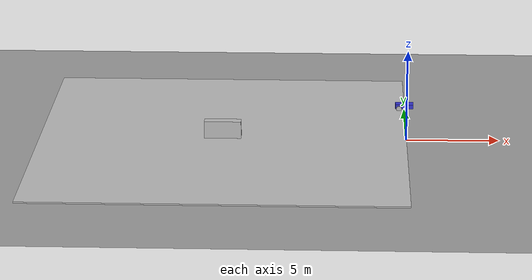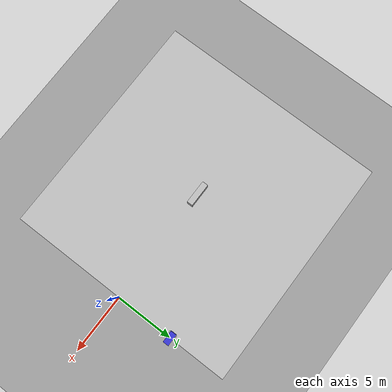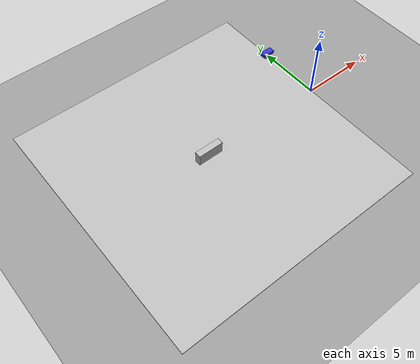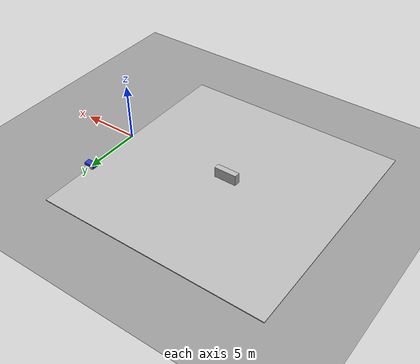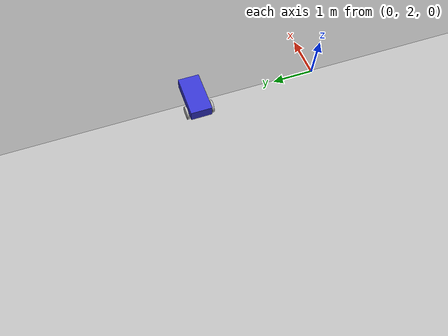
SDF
<sdf version="1.12">
 <world name="test_world">
  <gravity>0 0 -9.81</gravity>
  <magnetic_field>5.5645e-6 22.8758e-6 -42.3884e-6</magnetic_field>
  <wind><linear_velocity>1.5 0.5 0</linear_velocity></wind>
  <atmosphere type="adiabatic">
   <temperature>288.15</temperature>
   <temperature_gradient>-0.0065</temperature_gradient>
   <pressure>101325</pressure>
  </atmosphere>
  <scene>
   <ambient>0.4 0.4 0.4 1</ambient>
   <background>0.7 0.8 0.95 1</background>
   <shadows>true</shadows>
   <grid>true</grid>
   <origin_visual>true</origin_visual>
   <sky>
    <time>12</time>
    <sunrise>6</sunrise>
    <sunset>18</sunset>
    <clouds>
     <speed>5</speed>
     <direction>0.7</direction>
     <humidity>0.6</humidity>
     <mean_size>0.5</mean_size>
     <ambient>0.9 0.9 0.9 1</ambient>
    </clouds>
   </sky>
  </scene>
  <physics name="fast_physics" type="ode">
   <max_step_size>0.002</max_step_size>
   <real_time_factor>1</real_time_factor>
   <max_contacts>20</max_contacts>
  </physics>
  <physics name="precise_physics" default="true" type="bullet">
   <max_step_size>0.0005</max_step_size>
   <real_time_factor>0.5</real_time_factor>
   <max_contacts>50</max_contacts>
  </physics>
  <spherical_coordinates>
   <surface_model>EARTH_WGS84</surface_model>
   <world_frame_orientation>ENU</world_frame_orientation>
   <latitude_deg>37.386</latitude_deg>
   <longitude_deg>-122.083</longitude_deg>
   <elevation>10.5</elevation>
   <heading_deg>90</heading_deg>
  </spherical_coordinates>
  <model name="ground_plane">
   <static>true</static>
   <link name="link">
    <collision name="collision">
     <geometry><plane><normal>0 0 1</normal><size>200 200</size></plane></geometry>
     <surface>
      <contact>
       <collide_bitmask>0xffff</collide_bitmask>
       <collide_without_contact>false</collide_without_contact>
       <collide_without_contact_bitmask>1</collide_without_contact_bitmask>
       <category_bitmask>0x00ff</category_bitmask>
       <poissons_ratio>0.3</poissons_ratio>
       <elastic_modulus>1e8</elastic_modulus>
      </contact>
      <friction>
       <ode><mu>100</mu><mu2>50</mu2><fdir1>1 0 0</fdir1><slip1>0.01</slip1><slip2>0.01</slip2></ode>
       <bullet><friction>0.8</friction><friction2>0.6</friction2><rolling_friction>0.01</rolling_friction></bullet>
       <torsional>
        <coefficient>0.5</coefficient>
        <use_patch_radius>true</use_patch_radius>
        <patch_radius>0.05</patch_radius>
        <surface_radius>0.02</surface_radius>
        <ode><slip>0.001</slip></ode>
       </torsional>
      </friction>
      <bounce><restitution_coefficient>0.5</restitution_coefficient><threshold>1000</threshold></bounce>
     </surface>
    </collision>
    <visual name="visual">
     <geometry><plane><normal>0 0 1</normal><size>200 200</size></plane></geometry>
     <material>
      <ambient>0.6 0.6 0.6 1</ambient>
      <diffuse>0.6 0.6 0.6 1</diffuse>
      <specular>0.1 0.1 0.1 1</specular>
      <emissive>0 0 0 1</emissive>
      <lighting>true</lighting>
      <double_sided>false</double_sided>
      <shininess>30</shininess>
     </material>
     <cast_shadows>false</cast_shadows>
     <laser_retro>50.0</laser_retro>
     <visibility_flags>1</visibility_flags>
    </visual>
   </link>
  </model>
  <model name="sensor_robot">
   <pose>0 5 0.25 0 0 0</pose>
   <self_collide>true</self_collide>
   <link name="base">
    <self_collide>true</self_collide>
    <velocity_decay><linear>0.01</linear><angular>0.02</angular></velocity_decay>
    <inertial auto="true">
     <mass>10</mass>
     <inertia><ixx>0.833</ixx><iyy>0.833</iyy><izz>0.833</izz><ixy>0</ixy><ixz>0</ixz><iyz>0</iyz></inertia>
    </inertial>
    <enable_wind>true</enable_wind>
    <enable_gravity>true</enable_gravity>
    <collision name="base_collision">
     <density>2700</density>
     <laser_retro>80</laser_retro>
     <max_contacts>15</max_contacts>
     <geometry><box><size>1 0.5 0.25</size></box></geometry>
     <surface><friction><ode><mu>1.0</mu><mu2>0.8</mu2></ode></friction></surface>
    </collision>
    <visual name="base_visual">
     <meta><layer>2</layer></meta>
     <geometry><box><size>1 0.5 0.25</size></box></geometry>
     <material>
      <ambient>0.2 0.2 0.8 1</ambient>
      <diffuse>0.2 0.2 0.8 1</diffuse>
      <specular>0.5 0.5 0.5 1</specular>
      <shininess>50</shininess>
      <pbr>
       <metal>
        <albedo_map>textures/base_albedo.png</albedo_map>
        <normal_map type="tangent">textures/base_normal.png</normal_map>
        <roughness_map>textures/base_roughness.png</roughness_map>
        <metalness_map>textures/base_metalness.png</metalness_map>
        <metalness>0.7</metalness>
        <roughness>0.3</roughness>
        <environment_map>textures/env.dds</environment_map>
        <emissive_map>textures/base_emissive.png</emissive_map>
        <light_map uv_set="1">textures/base_lightmap.png</light_map>
       </metal>
      </pbr>
     </material>
     <transparency>0.1</transparency>
     <laser_retro>100.0</laser_retro>
     <visibility_flags>3</visibility_flags>
    </visual>
    <sensor name="front_camera" type="camera">
     <pose>0.5 0 0.15 0 0 0</pose>
     <update_rate>30</update_rate>
     <topic>/robot/camera</topic>
     <frame_id>camera_optical_frame</frame_id>
     <always_on>true</always_on>
     <visualize>true</visualize>
     <enable_metrics>false</enable_metrics>
     <camera name="rgb_cam">
      <horizontal_fov>1.396</horizontal_fov>
      <image><width>1920</width><height>1080</height><format>R8G8B8</format><anti_aliasing>8</anti_aliasing></image>
      <clip><near>0.05</near><far>300</far></clip>
      <depth_camera><clip><near>0.1</near><far>50</far></clip></depth_camera>
      <noise type="gaussian"><mean>0.0</mean><stddev>0.007</stddev></noise>
      <save enabled="true"><path>/tmp/camera_frames</path></save>
      <visibility_mask>0xFFFF</visibility_mask>
      <triggered>true</triggered>
      <trigger_topic>/camera/trigger</trigger_topic>
      <camera_info_topic>/camera/info</camera_info_topic>
      <optical_frame_id>optical_frame</optical_frame_id>
      <distortion>
       <k1>0.1</k1>
       <k2>0.2</k2>
       <k3>0.3</k3>
       <p1>0.01</p1>
       <p2>0.02</p2>
       <center>0.5 0.5</center>
      </distortion>
      <lens>
       <type>stereographic</type>
       <scale_to_hfov>true</scale_to_hfov>
       <cutoff_angle>1.5707</cutoff_angle>
       <env_texture_size>512</env_texture_size>
       <intrinsics><fx>960</fx><fy>960</fy><cx>960</cx><cy>540</cy><s>0</s></intrinsics>
      </lens>
     </camera>
    </sensor>
    <sensor name="depth_cam" type="depth_camera">
     <pose>0.5 0.05 0.15 0 0 0</pose>
     <update_rate>15</update_rate>
     <camera name="depth">
      <horizontal_fov>1.047</horizontal_fov>
      <image><width>640</width><height>480</height><format>R_FLOAT32</format></image>
      <clip><near>0.1</near><far>10</far></clip>
     </camera>
    </sensor>
    <sensor name="body_imu" type="imu">
     <pose>0 0 0.05 0 0 0</pose>
     <update_rate>200</update_rate>
     <imu>
      <linear_acceleration>
       <x>
        <noise type="gaussian">
         <mean>0</mean>
         <stddev>0.01</stddev>
         <bias_mean>0.001</bias_mean>
         <bias_stddev>0.0001</bias_stddev>
         <dynamic_bias_stddev>0.00002</dynamic_bias_stddev>
         <dynamic_bias_correlation_time>300</dynamic_bias_correlation_time>
        </noise>
       </x>
       <y><noise type="gaussian"><mean>0</mean><stddev>0.01</stddev></noise></y>
       <z><noise type="gaussian"><mean>0</mean><stddev>0.01</stddev></noise></z>
      </linear_acceleration>
      <angular_velocity>
       <x><noise type="gaussian"><mean>0</mean><stddev>0.005</stddev></noise></x>
       <y><noise type="gaussian"><mean>0</mean><stddev>0.005</stddev></noise></y>
       <z><noise type="gaussian"><mean>0</mean><stddev>0.005</stddev></noise></z>
      </angular_velocity>
      <orientation_reference_frame>
       <localization>ENU</localization>
       <custom_rpy parent_frame="world">0 0 0</custom_rpy>
       <grav_dir_x parent_frame="world">1 0 0</grav_dir_x>
      </orientation_reference_frame>
      <enable_orientation>true</enable_orientation>
     </imu>
    </sensor>
    <sensor name="lidar_360" type="gpu_lidar">
     <pose>0 0 0.3 0 0 0</pose>
     <update_rate>10</update_rate>
     <topic>/robot/lidar</topic>
     <lidar>
      <scan>
       <horizontal>
        <samples>640</samples>
        <resolution>1</resolution>
        <min_angle>-3.14159</min_angle>
        <max_angle>3.14159</max_angle>
       </horizontal>
       <vertical>
        <samples>16</samples>
        <resolution>1</resolution>
        <min_angle>-0.2618</min_angle>
        <max_angle>0.2618</max_angle>
       </vertical>
      </scan>
      <range><min>0.08</min><max>100.0</max><resolution>0.01</resolution></range>
      <noise type="gaussian"><mean>0</mean><stddev>0.02</stddev></noise>
      <visibility_mask>0xFFFF</visibility_mask>
     </lidar>
    </sensor>
    <sensor name="wrist_ft" type="force_torque">
     <update_rate>500</update_rate>
     <force_torque>
      <frame>child</frame>
      <measure_direction>child_to_parent</measure_direction>
      <force>
       <x><noise type="gaussian"><mean>0</mean><stddev>0.1</stddev></noise></x>
       <y><noise type="gaussian"><mean>0</mean><stddev>0.1</stddev></noise></y>
       <z><noise type="gaussian"><mean>0</mean><stddev>0.1</stddev></noise></z>
      </force>
      <torque>
       <x><noise type="gaussian"><mean>0</mean><stddev>0.01</stddev></noise></x>
       <y><noise type="gaussian"><mean>0</mean><stddev>0.01</stddev></noise></y>
       <z><noise type="gaussian"><mean>0</mean><stddev>0.01</stddev></noise></z>
      </torque>
     </force_torque>
    </sensor>
    <sensor name="bumper" type="contact"><update_rate>100</update_rate></sensor>
    <sensor name="altitude" type="altimeter">
     <update_rate>20</update_rate>
     <altimeter>
      <vertical_position><noise type="gaussian"><mean>0</mean><stddev>0.1</stddev></noise></vertical_position>
      <vertical_velocity><noise type="gaussian"><mean>0</mean><stddev>0.02</stddev></noise></vertical_velocity>
     </altimeter>
    </sensor>
    <sensor name="baro" type="air_pressure">
     <update_rate>50</update_rate>
     <air_pressure>
      <reference_altitude>100</reference_altitude>
      <pressure><noise type="gaussian"><mean>0</mean><stddev>10</stddev></noise></pressure>
     </air_pressure>
    </sensor>
    <sensor name="mag" type="magnetometer">
     <update_rate>50</update_rate>
     <magnetometer>
      <x><noise type="gaussian"><mean>0</mean><stddev>0.001</stddev></noise></x>
      <y><noise type="gaussian"><mean>0</mean><stddev>0.001</stddev></noise></y>
      <z><noise type="gaussian"><mean>0</mean><stddev>0.001</stddev></noise></z>
     </magnetometer>
    </sensor>
    <sensor name="gps" type="navsat">
     <update_rate>5</update_rate>
     <navsat>
      <position_sensing>
       <horizontal><noise type="gaussian"><mean>0</mean><stddev>0.5</stddev></noise></horizontal>
       <vertical><noise type="gaussian"><mean>0</mean><stddev>1.0</stddev></noise></vertical>
      </position_sensing>
      <velocity_sensing>
       <horizontal><noise type="gaussian"><mean>0</mean><stddev>0.05</stddev></noise></horizontal>
       <vertical><noise type="gaussian"><mean>0</mean><stddev>0.1</stddev></noise></vertical>
      </velocity_sensing>
     </navsat>
    </sensor>
    <light name="headlight" type="spot">
     <pose>0.5 0 0.1 0 0 0</pose>
     <diffuse>1 1 0.9 1</diffuse>
     <specular>1 1 1 1</specular>
     <intensity>2.5</intensity>
     <attenuation>
      <range>30</range>
      <constant>0.1</constant>
      <linear>0.01</linear>
      <quadratic>0.001</quadratic>
     </attenuation>
     <direction>1 0 -0.2</direction>
     <spot><inner_angle>0.3</inner_angle><outer_angle>0.6</outer_angle><falloff>1.0</falloff></spot>
    </light>
   </link>
   <link name="left_wheel">
    <pose>-0.3 0.3 -0.1 -1.5708 0 0</pose>
    <inertial><mass>1</mass></inertial>
    <collision name="collision">
     <geometry><cylinder><radius>0.15</radius><length>0.05</length></cylinder></geometry>
    </collision>
    <visual name="visual">
     <geometry><cylinder><radius>0.15</radius><length>0.05</length></cylinder></geometry>
    </visual>
   </link>
   <link name="right_wheel">
    <pose>-0.3 -0.3 -0.1 -1.5708 0 0</pose>
    <inertial><mass>1</mass></inertial>
    <collision name="collision">
     <geometry><cylinder><radius>0.15</radius><length>0.05</length></cylinder></geometry>
    </collision>
    <visual name="visual">
     <geometry><cylinder><radius>0.15</radius><length>0.05</length></cylinder></geometry>
    </visual>
   </link>
   <link name="caster">
    <pose>0.35 0 -0.125 0 0 0</pose>
    <inertial><mass>0.5</mass></inertial>
    <collision name="collision"><geometry><sphere><radius>0.05</radius></sphere></geometry></collision>
    <visual name="visual"><geometry><sphere><radius>0.05</radius></sphere></geometry></visual>
   </link>
   <joint name="left_wheel_joint" type="revolute">
    <parent>base</parent>
    <child>left_wheel</child>
    <axis>
     <xyz expressed_in="__model__">0 0 1</xyz>
     <limit>
      <lower>-1e16</lower>
      <upper>1e16</upper>
      <effort>50</effort>
      <velocity>20</velocity>
      <stiffness>1e8</stiffness>
      <dissipation>1.0</dissipation>
     </limit>
     <dynamics>
      <damping>0.1</damping>
      <friction>0.05</friction>
      <spring_reference>0</spring_reference>
      <spring_stiffness>0</spring_stiffness>
     </dynamics>
    </axis>
   </joint>
   <joint name="right_wheel_joint" type="revolute">
    <parent>base</parent>
    <child>right_wheel</child>
    <axis>
     <xyz>0 0 1</xyz>
     <limit><lower>-1e16</lower><upper>1e16</upper><effort>50</effort><velocity>20</velocity></limit>
     <dynamics><damping>0.1</damping><friction>0.05</friction></dynamics>
    </axis>
   </joint>
   <joint name="caster_joint" type="ball"><parent>base</parent><child>caster</child></joint>
   <joint name="sensor_mount" type="fixed"><parent>base</parent><child>base</child></joint>
   <joint name="lift_joint" type="prismatic">
    <parent>base</parent>
    <child>caster</child>
    <axis><xyz>0 0 1</xyz><limit><lower>0</lower><upper>0.5</upper><effort>100</effort></limit></axis>
   </joint>
   <joint name="screw_joint" type="screw">
    <parent>base</parent>
    <child>left_wheel</child>
    <screw_thread_pitch>0.01</screw_thread_pitch>
    <thread_pitch>628.318</thread_pitch>
    <axis><xyz>0 0 1</xyz></axis>
   </joint>
   <frame name="camera_optical" attached_to="base">
    <pose relative_to="base">0.5 0 0.15 -1.5708 0 -1.5708</pose>
   </frame>
   <frame name="imu_frame" attached_to="base"><pose>0 0 0.05 0 0 0</pose></frame>
   <plugin name="diff_drive" filename="libDiffDrive.so">
    <left_joint>left_wheel_joint</left_joint>
    <right_joint>right_wheel_joint</right_joint>
    <wheel_separation>0.6</wheel_separation>
    <wheel_radius>0.15</wheel_radius>
   </plugin>
   <plugin name="joint_controller" filename="libJointController.so"><joint_name>lift_joint</joint_name></plugin>
  </model>
  <model name="warehouse">
   <static>true</static>
   <pose>-10 0 0 0 0 0</pose>
   <link name="floor">
    <visual name="visual"><geometry><box><size>20 20 0.1</size></box></geometry></visual>
   </link>
   <model name="shelf_unit">
    <pose>0 0 0.5 0 0 0</pose>
    <link name="shelf"><visual name="visual"><geometry><box><size>2 0.5 1</size></box></geometry></visual></link>
   </model>
  </model>
  <light name="sun" type="directional">
   <intensity>1.0</intensity>
   <diffuse>0.9 0.9 0.85 1</diffuse>
   <specular>0.3 0.3 0.3 1</specular>
   <direction>-0.5 0.1 -0.9</direction>
   <attenuation>
    <range>1000</range>
    <constant>0.9</constant>
    <linear>0.01</linear>
    <quadratic>0.001</quadratic>
   </attenuation>
  </light>
  <light name="lamp" type="point">
   <pose>3 3 3 0 0 0</pose>
   <cast_shadows>false</cast_shadows>
   <diffuse>1 0.95 0.8 1</diffuse>
   <specular>0.5 0.5 0.5 1</specular>
   <intensity>1.5</intensity>
   <attenuation>
    <range>20</range>
    <constant>0.5</constant>
    <linear>0.1</linear>
    <quadratic>0.01</quadratic>
   </attenuation>
  </light>
  <light name="spotlight" type="spot">
   <pose>0 0 5 0 0 0</pose>
   <diffuse>1 1 1 1</diffuse>
   <specular>1 1 1 1</specular>
   <intensity>3.0</intensity>
   <direction>0 0 -1</direction>
   <attenuation>
    <range>50</range>
    <constant>0.1</constant>
    <linear>0.01</linear>
    <quadratic>0.005</quadratic>
   </attenuation>
   <spot><inner_angle>0.2</inner_angle><outer_angle>0.5</outer_angle><falloff>1.0</falloff></spot>
  </light>
  <frame name="world_origin"/>
 </world>
</sdf>
